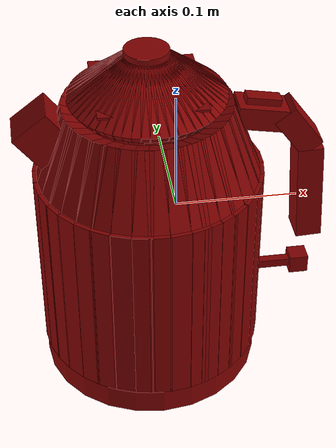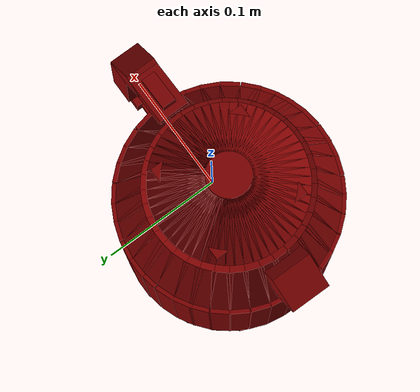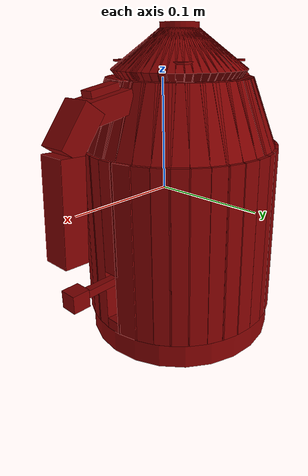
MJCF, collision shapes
<?xml version='1.0' encoding='UTF-8'?>
<mujoco model="model">
  <option timestep="0.002" gravity="0.0 0.0 -9.81"/>
  <compiler angle="radian"/>
  <asset>
    <mesh file="visuals/button_lid.obj" name="button_lid_vis"/>
    <mesh file="visuals/Body001.obj" name="Body001_vis"/>
    <mesh file="visuals/kettle_main.obj" name="kettle_main_vis"/>
    <mesh file="visuals/lid.obj" name="lid_vis"/>
    <mesh file="visuals/switch.obj" name="switch_vis"/>
    <texture file="visuals/T_BC001.png" name="Body001_material" type="2d"/>
    <material name="Body001_material" rgba="1 1 1 1.0" texture="Body001_material" shininess="0.1" specular="2"/>
    <texture file="visuals/T_BC001.png" name="kettle_main_material" type="2d"/>
    <material name="kettle_main_material" rgba="1 1 1 1.0" texture="kettle_main_material" shininess="0.1" specular="2"/>
    <texture file="visuals/T_BC001.png" name="button_lid_material" type="2d"/>
    <material name="button_lid_material" rgba="1 1 1 1.0" texture="button_lid_material" shininess="0.1" specular="2"/>
    <texture file="visuals/T_BC001.png" name="lid_material" type="2d"/>
    <material name="lid_material" rgba="1 1 1 1.0" texture="lid_material" shininess="0.1" specular="2"/>
    <texture file="visuals/T_BC001.png" name="switch_material" type="2d"/>
    <material name="switch_material" rgba="1 1 1 1.0" texture="switch_material" shininess="0.1" specular="2"/>
  </asset>
  <default>
    <default class="visual">
      <geom conaffinity="0" contype="0" group="1" type="mesh"/>
    </default>
    <default class="collision">
      <geom group="0" rgba="0.5 0 0 0.5"/>
    </default>
    <default class="spawn">
      <geom group="0" rgba="1 1 1 0.5" contype="0" conaffinity="0"/>
      <site group="0" rgba="1 1 1 0.5"/>
    </default>
    <default class="region">
      <geom group="1" conaffinity="0" contype="0" rgba="0 1 0 0" mass="0"/>
    </default>
  </default>
  <worldbody>
    <body>
      <body name="object">
        <geom mesh="Body001_vis" type="mesh" solimp="0.998 0.998 0.001" solref="0.001 1" friction="0.95 0.3 0.1" class="visual" material="Body001_material"/>
        <geom type="cylinder" pos="-0.02239589 0.00002150 -0.13422964" size="0.09025027602910995 0.011107783764600754" quat="1.0 0.0 0.0 0.0" class="collision"/>
        <body name="kettle_main">
          <geom mesh="kettle_main_vis" type="mesh" solimp="0.998 0.998 0.001" solref="0.001 1" friction="0.95 0.3 0.1" class="visual" material="kettle_main_material"/>
          <geom type="box" pos="-0.10581779 -0.00011224 -0.04121937" size="0.007948611862957478 0.007948611862957478 0.08029966801404953" quat="1.0 0.0 0.0 0.0" class="collision"/>
          <geom type="box" pos="-0.09212531 -0.00011223 0.06601944" size="0.007948610931634903 0.007948611862957478 0.03272615373134613" quat="0.9845579266548157 -4.873923928498994e-16 0.1750592142343521 -5.9920197692520105e-09" class="collision"/>
          <geom type="box" pos="-0.10438437 -0.01554539 -0.04121937" size="0.007948611862957478 0.007948611862957478 0.08029966056346893" quat="0.9957143664360046 0.0 0.0 0.09248179197311401" class="collision"/>
          <geom type="box" pos="-0.09092609 -0.01302363 0.06601944" size="0.007948610931634903 0.007948611862957478 0.03272615373134613" quat="0.980338454246521 -0.016189808025956154 0.17430897057056427 0.09105365723371506" class="collision"/>
          <geom type="box" pos="-0.10038333 -0.02979825 -0.04121937" size="0.007948611862957478 0.007948611862957478 0.08029966801404953" quat="0.9836534261703491 0.0 0.0 0.18007197976112366" class="collision"/>
          <geom type="box" pos="-0.08757885 -0.02494759 0.06601943" size="0.007948610931634903 0.007948611862957478 0.03272615373134613" quat="0.9684637784957886 -0.03152326121926308 0.17219769954681396 0.1772911548614502" class="collision"/>
          <geom type="box" pos="-0.09485838 -0.04154465 -0.04121937" size="0.007948611862957478 0.007948611862957478 0.08029966801404953" quat="0.9667513370513916 0.0 0.0 0.25571826100349426" class="collision"/>
          <geom type="box" pos="-0.08295664 -0.03477464 0.06601945" size="0.007948610931634903 0.007948611862957478 0.03272615373134613" quat="0.9518226981163025 -0.044765815138816833 0.16923873126506805 0.2517693340778351" class="collision"/>
          <geom type="box" pos="-0.08598178 -0.05425067 -0.04121937" size="0.007948611862957478 0.007948611862957478 0.08029966801404953" quat="0.938959002494812 0.0 0.0 0.34402912855148315" class="collision"/>
          <geom type="box" pos="-0.07553048 -0.04540451 0.06601944" size="0.007948610000312328 0.007948611862957478 0.03272615373134613" quat="0.9244593977928162 -0.06022552773356438 0.16437342762947083 0.3387168347835541" class="collision"/>
          <geom type="box" pos="-0.07545696 -0.06466125 -0.04121937" size="0.007948611862957478 0.007948611862957478 0.08029966801404953" quat="0.9049006104469299 0.0 0.0 0.42562296986579895" class="collision"/>
          <geom type="box" pos="-0.06672540 -0.05411403 0.06601945" size="0.007948610931634903 0.007948611862957478 0.03272615373134613" quat="0.8909270763397217 -0.07450919598340988 0.1584111899137497 0.41905033588409424" class="collision"/>
          <geom type="box" pos="-0.06492897 -0.07209078 -0.04121937" size="0.007948611862957478 0.007948611862957478 0.08029966801404953" quat="0.8694984316825867 0.0 0.0 0.4939357042312622" class="collision"/>
          <geom type="box" pos="-0.05791766 -0.06032958 0.06601944" size="0.007948610931634903 0.007948611862957478 0.03272615373134613" quat="0.8560715317726135 -0.08646801114082336 0.1522136926651001 0.48630836606025696" class="collision"/>
          <geom type="box" pos="-0.05093862 -0.07876215 -0.04121937" size="0.007948611862957478 0.007948610931634903 0.08029966801404953" quat="0.8200920224189758 0.0 0.0 0.572231650352478" class="collision"/>
          <geom type="box" pos="-0.04621332 -0.06591086 0.06601944" size="0.007948610931634903 0.007948610931634903 0.03272615373134613" quat="0.8074278831481934 -0.10017447918653488 0.14356465637683868 0.5633955001831055" class="collision"/>
          <geom type="box" pos="-0.03664734 -0.08262372 -0.04121937" size="0.007948611862957478 0.007948611862957478 0.08029966801404953" quat="0.7663411498069763 0.0 0.0 0.6424338221549988" class="collision"/>
          <geom type="box" pos="-0.03425722 -0.06914146 0.06601944" size="0.007948610931634903 0.007948611862957478 0.03272615373134613" quat="0.7545071840286255 -0.11246397346258163 0.13415507972240448 0.6325133442878723" class="collision"/>
          <geom type="box" pos="-0.02530313 -0.08384592 -0.04121937" size="0.007948611862957478 0.007948611862957478 0.08029966801404953" quat="0.7208265662193298 0.0 0.0 0.6931154727935791" class="collision"/>
          <geom type="box" pos="-0.02476663 -0.07016394 0.06601944" size="0.007948610931634903 0.007948611862957478 0.03272615373134613" quat="0.7096955180168152 -0.12133622169494629 0.1261872947216034 0.682412326335907" class="collision"/>
          <geom type="box" pos="-0.00982566 -0.08301828 -0.04121937" size="0.007948611862957478 0.007948611862957478 0.08029966801404953" quat="0.653636634349823 0.0 0.0 0.7568085193634033" class="collision"/>
          <geom type="box" pos="-0.01181816 -0.06947154 0.06601944" size="0.007948610931634903 0.007948611862957478 0.03272615373134613" quat="0.6435433030128479 -0.1324862688779831 0.11442514508962631 0.7451216578483582" class="collision"/>
          <geom type="box" pos="0.00457303 -0.07957879 -0.04121937" size="0.007948611862957478 0.007948610931634903 0.08029966801404953" quat="0.5842328667640686 0.0 0.0 0.8115860819816589" class="collision"/>
          <geom type="box" pos="0.00022779 -0.06659405 0.06601944" size="0.007948610931634903 0.007948611862957478 0.03272615373134613" quat="0.5752110481262207 -0.14207561314105988 0.10227534919977188 0.7990534901618958" class="collision"/>
          <geom type="box" pos="0.06036700 0.01530300 -0.04121937" size="0.007948611862957478 0.009708872996270657 0.08029966801404953" quat="0.10280422121286392 0.0 0.0 -0.994701623916626" class="collision"/>
          <geom type="box" pos="0.04660392 0.01422567 0.06601944" size="0.007948610931634903 0.007948611862957478 0.03272615373134613" quat="0.10121671855449677 0.1741313934326172 0.017996804788708687 -0.9793413877487183" class="collision"/>
          <geom type="box" pos="0.05544749 0.03183982 -0.04121937" size="0.007948611862957478 0.007948611862957478 0.08029966801404953" quat="0.19435535371303558 0.0 0.0 -0.9809311628341675" class="collision"/>
          <geom type="box" pos="0.04278945 0.02661889 0.06601944" size="0.007948610931634903 0.007948611862957478 0.03272615373134613" quat="0.19135409593582153 0.17172114551067352 0.03402369096875191 -0.9657835364341736" class="collision"/>
          <geom type="box" pos="0.04861606 0.04497313 -0.04121937" size="0.007948611862957478 0.007948611862957478 0.08029966801404953" quat="0.28024157881736755 0.0 0.0 -0.9599295258522034" class="collision"/>
          <geom type="box" pos="0.03707426 0.03760624 0.06601944" size="0.007948610000312328 0.007948611862957478 0.03272615373134613" quat="0.27591386437416077 0.16804443299770355 0.04905886948108673 -0.9451062679290771" class="collision"/>
          <geom type="box" pos="0.04080552 0.05534127 -0.04121937" size="0.007948611862957478 0.007948611862957478 0.08029966801404953" quat="0.35374948382377625 0.0 0.0 -0.9353402256965637" class="collision"/>
          <geom type="box" pos="0.03053996 0.04628023 0.06601944" size="0.007948610931634903 0.007948611862957478 0.03272615373134613" quat="0.3482867479324341 0.163739874958992 0.061927080154418945 -0.9208966493606567" class="collision"/>
          <geom type="box" pos="0.02951791 0.06596330 -0.04121937" size="0.007948611862957478 0.007948611862957478 0.08029966801404953" quat="0.43873539566993713 0.0 0.0 -0.8986163139343262" class="collision"/>
          <geom type="box" pos="0.02109675 0.05516663 0.06601944" size="0.007948610931634903 0.007948611862957478 0.03272615373134613" quat="0.43196019530296326 0.15731112658977509 0.07680465281009674 -0.884739875793457" class="collision"/>
          <geom type="box" pos="0.01708644 0.07400129 -0.04121937" size="0.007948611862957478 0.007948611862957478 0.08029966801404953" quat="0.5163952112197876 0.0 0.0 -0.8563503623008728" class="collision"/>
          <geom type="box" pos="0.01069653 0.06189124 0.06601943" size="0.007948610931634903 0.007948610931634903 0.03272615373134613" quat="0.5084208250045776 0.1499119997024536 0.09039968252182007 -0.843126654624939" class="collision"/>
          <geom type="box" pos="0.00526149 0.07912060 -0.04121937" size="0.007948611862957478 0.007948610931634903 0.08029966801404953" quat="0.5807065963745117 0.0 0.0 -0.8141129016876221" class="collision"/>
          <geom type="box" pos="0.00080378 0.06617406 0.06601944" size="0.007948610931634903 0.007948610931634903 0.03272615373134613" quat="0.5717393159866333 0.14251793920993805 0.10165807604789734 -0.801541268825531" class="collision"/>
          <geom type="box" pos="-0.00979757 0.08278968 -0.04121937" size="0.007948611862957478 0.007948610931634903 0.08029966801404953" quat="0.6535086035728455 0.0 0.0 -0.7569190859794617" class="collision"/>
          <geom type="box" pos="-0.01179465 0.06924361 0.06601944" size="0.007948610931634903 0.007948611862957478 0.03272615373134613" quat="0.6434170603752136 0.13250568509101868 0.11440267413854599 -0.7452306747436523" class="collision"/>
          <geom type="box" pos="-0.02457652 0.08364677 -0.04121937" size="0.008187434636056423 0.008187435567378998 0.08029966801404953" quat="1.0 0.0 0.0 0.0" class="collision"/>
          <geom type="box" pos="-0.02415874 0.06996065 0.06601945" size="0.007948610931634903 0.007948610931634903 0.03272615373134613" quat="0.706728458404541 0.12188252806663513 0.12565977871418 -0.6854845881462097" class="collision"/>
          <geom type="box" pos="-0.03593093 0.08252304 -0.04121937" size="0.007948612794280052 0.007948611862957478 0.08029966801404953" quat="0.7635470032691956 0.0 0.0 -0.6457522511482239" class="collision"/>
          <geom type="box" pos="-0.03365787 0.06902056 0.06601944" size="0.007948610931634903 0.007948611862957478 0.03272615373134613" quat="0.7517561912536621 0.113044872879982 0.13366585969924927 -0.6357805728912354" class="collision"/>
          <geom type="box" pos="-0.05091195 0.07854747 -0.04121937" size="0.007948611862957478 0.007948610931634903 0.08029966801404953" quat="0.8199950456619263 0.0 0.0 -0.5723706483840942" class="collision"/>
          <geom type="box" pos="-0.04619104 0.06569458 0.06601944" size="0.007948610931634903 0.007948610931634903 0.03272615373134613" quat="0.8073327541351318 0.10019870102405548 0.1435476690530777 -0.5635318160057068" class="collision"/>
          <geom type="box" pos="-0.06430284 0.07223589 -0.04121937" size="0.007948611862957478 0.007948610931634903 0.08029966801404953" quat="0.8673474788665771 0.0 0.0 -0.49770310521125793" class="collision"/>
          <geom type="box" pos="-0.05739384 0.06041429 0.06601945" size="0.007948610931634903 0.007948610931634903 0.03272615373134613" quat="0.8539538383483887 0.08712749928236008 0.15183717012405396 -0.49001747369766235" class="collision"/>
          <geom type="box" pos="0.01295982 -0.07626037 -0.04121937" size="0.007948611862957478 0.007948611862957478 0.08029966801404953" quat="0.5397094488143921 0.0 0.0 0.8418513536453247" class="collision"/>
          <geom type="box" pos="0.00724420 -0.06381787 0.06601944" size="0.007948610931634903 0.007948611862957478 0.03272615373134613" quat="0.5313752889633179 -0.14737384021282196 0.09448109567165375 0.8288513422012329" class="collision"/>
          <geom type="box" pos="0.02581375 -0.06891677 -0.04121937" size="0.007948611862957478 0.007948611862957478 0.08029966801404953" quat="0.46323898434638977 0.0 0.0 0.886233389377594" class="collision"/>
          <geom type="box" pos="0.01799781 -0.05767421 0.06601944" size="0.007948610931634903 0.007948611862957478 0.03272615373134613" quat="0.4560857117176056 -0.15514332056045532 0.08109427988529205 0.8725480437278748" class="collision"/>
          <geom type="box" pos="0.03471698 -0.06178111 -0.04121937" size="0.007948611862957478 0.007948611862957478 0.08029966801404953" quat="0.40182992815971375 0.0 0.0 0.9157143235206604" class="collision"/>
          <geom type="box" pos="0.02544627 -0.05170451 0.06601944" size="0.007948610931634903 0.007948611862957478 0.03272615373134613" quat="0.3956248164176941 -0.1603042334318161 0.07034402340650558 0.9015737771987915" class="collision"/>
          <geom type="box" pos="0.04510408 -0.05027696 -0.04121937" size="0.007948611862957478 0.007948611862957478 0.08029966801404953" quat="0.31542089581489563 0.0 0.0 0.9489519000053406" class="collision"/>
          <geom type="box" pos="0.03413612 -0.04208011 0.06601945" size="0.007948610931634903 0.007948611862957478 0.03272615373134613" quat="0.3105500340461731 -0.16612274944782257 0.05521732568740845 0.9342980980873108" class="collision"/>
          <geom type="box" pos="0.05288412 -0.03768240 -0.04121937" size="0.007948611862957478 0.007948611862957478 0.08029966801404953" quat="0.23036693036556244 0.0 0.0 0.9731038212776184" class="collision"/>
          <geom type="box" pos="0.04064493 -0.03154348 0.06601945" size="0.007948610931634903 0.007948611862957478 0.03272615373134613" quat="0.22680959105491638 -0.17035050690174103 0.040327806025743484 0.9580771327018738" class="collision"/>
          <geom type="box" pos="0.05784227 -0.02549264 -0.04121937" size="0.007948611862957478 0.007948610931634903 0.08029966801404953" quat="0.15324817597866058 0.0 0.0 0.9881877303123474" class="collision"/>
          <geom type="box" pos="0.04479292 -0.02134552 0.06601945" size="0.007948610931634903 0.007948610931634903 0.03272615373134613" quat="0.15088170766830444 -0.17299136519432068 0.026827529072761536 0.9729280471801758" class="collision"/>
          <geom type="box" pos="0.04805317 0.00202580 0.06601944" size="0.007948610931634903 0.007948611862957478 0.03272615373134613" quat="0.01501502562314272 0.17503874003887177 0.002669745124876499 -0.9844434261322021" class="collision"/>
          <geom type="box" pos="0.04754600 -0.00879500 0.06601943" size="0.007948610931634903 0.00794860441237688 0.03272615373134613" quat="0.06108783185482025 -0.17472168803215027 0.010861722752451897 0.9826610088348389" class="collision"/>
          <geom type="box" pos="0.06075498 -0.01316789 -0.04124001" size="0.007948611862957478 0.007948611862957478 0.0803203135728836" quat="0.07813844829797745 0.0 0.0 0.9969425201416016" class="collision"/>
          <geom type="box" pos="0.06175879 0.00169407 -0.01199844" size="0.0081181013956666 0.008118100464344025 0.05107874423265457" quat="1.0 0.0 0.0 0.0" class="collision"/>
          <geom type="box" pos="0.06175879 0.00169407 -0.11641592" size="0.008118102326989174 0.008118102326989174 0.005217194557189941" quat="1.0 0.0 0.0 0.0" class="collision"/>
          <geom class="collision" type="box" pos="0.10855432 0.00009023 0.00803316" size="0.01063530147075653 0.012839299626648426 0.042976342141628265" quat="0.9997133612632751 -5.541294305497961e-16 -0.023941773921251297 8.194917522352796e-10" name="handle_main"/>
          <geom class="collision" type="box" pos="0.09581497 0.00009023 0.06793181" size="0.009957022964954376 0.012839298695325851 0.020239876583218575" quat="0.9495863914489746 -9.819930890204922e-17 -0.31350547075271606 1.0730835775518699e-08" name="handle_2"/>
          <geom class="collision" type="box" pos="0.06607635 0.00018422 0.08208915" size="0.00939098373055458 0.012722176499664783 0.020239876583218575" quat="0.7654904127120972 -6.071419934053314e-15 -0.6434472799301147 2.202426507835753e-08" name="handle_1"/>
          <geom type="box" pos="-0.10301400 -0.00011223 0.08062714" size="0.016973985359072685 0.016973985359072685 0.016973985359072685" quat="0.9464852213859558 -2.3338427968222194e-15 -0.322747141122818 1.1047153414267541e-08" class="collision"/>
          <geom type="box" pos="-0.09389223 0.04297440 -0.04121937" size="0.007948611862957478 0.007948611862957478 0.08029966801404953" quat="0.9637652635574341 0.0 0.0 -0.26675182580947876" class="collision"/>
          <geom type="box" pos="-0.08214838 0.03593410 0.06601944" size="0.007948610931634903 0.007948611862957478 0.03272615373134613" quat="0.9488826990127563 0.04669737443327904 0.16871598362922668 -0.26263266801834106" class="collision"/>
          <geom type="box" pos="-0.10059809 0.02900055 -0.04121937" size="0.007948611862957478 0.007948610931634903 0.08029966056346893" quat="0.9843046069145203 0.0 0.0 -0.17647796869277954" class="collision"/>
          <geom type="box" pos="-0.08775851 0.02424357 0.06601944" size="0.007948610931634903 0.007948610931634903 0.03272615373134613" quat="0.9691048860549927 0.03089405782520771 0.17231160402297974 -0.1737527996301651" class="collision"/>
          <geom type="box" pos="-0.10449489 0.01471885 -0.04121937" size="0.007948611862957478 0.007948611862957478 0.08029966801404953" quat="0.9960455298423767 0.0 0.0 -0.08884436637163162" class="collision"/>
          <geom type="box" pos="-0.09101857 0.01229547 0.06601944" size="0.007948610931634903 0.007948611862957478 0.03272615373134613" quat="0.9806644916534424 0.015552972443401814 0.17436695098876953 -0.08747240155935287" class="collision"/>
          <geom type="box" pos="-0.07469483 0.06506020 -0.04121937" size="0.007948611862957478 0.007948611862957478 0.08029966801404953" quat="0.9023845195770264 0.0 0.0 -0.43093177676200867" class="collision"/>
          <geom type="box" pos="-0.06608781 0.05441111 0.06601944" size="0.007948610931634903 0.007948611862957478 0.03272615373134613" quat="0.8884498476982117 0.07543856650590897 0.15797072649002075 -0.42427724599838257" class="collision"/>
          <geom type="box" pos="-0.08579665 0.05424416 -0.04121937" size="0.007948611862957478 0.007948610931634903 0.08029966056346893" quat="0.9383705854415894 0.0 0.0 -0.34563082456588745" class="collision"/>
          <geom type="box" pos="-0.07537559 0.04536240 0.06601944" size="0.007948610931634903 0.007948611862957478 0.03272615373134613" quat="0.9238801598548889 0.06050587072968483 0.16427040100097656 -0.3402935564517975" class="collision"/>
          <geom type="cylinder" pos="-0.02222697 -0.00044559 -0.11939092" size="0.08808176964521408 0.00360363838262856" quat="1.0 0.0 0.0 0.0" class="collision"/>
          <body name="button_lid">
            <joint axis="-9.000340222254885e-16 1.0 6.617444900424222e-24" pos="0.06693952 -0.00007398 0.08919348" limited="true" name="button_lid_joint" range="0.0 0.2617993877991494" type="hinge" damping="1" frictionloss="1" armature=".01" stiffness="0.05" springref="-1"/>
            <geom mesh="button_lid_vis" type="mesh" solimp="0.998 0.998 0.001" solref="0.001 1" friction="0.95 0.3 0.1" class="visual" material="button_lid_material"/>
            <geom class="collision" type="box" pos="0.06788546 -0.00035834 0.09465915" size="0.002905243309214711 0.005928454454988241 0.014031442813575268" quat="0.7654904127120972 -6.071419934053314e-15 -0.6434472799301147 2.202426507835753e-08" name="button_lid_main"/>
          </body>
          <body name="lid">
            <joint axis="0.0 1.0 0.0" pos="0.03912222 -0.00011224 0.09875310" limited="true" name="lid_joint" range="0.0 1.5707963267948966" type="hinge" damping="1" frictionloss="1" armature=".01" stiffness="0.05"/>
            <geom mesh="lid_vis" type="mesh" solimp="0.998 0.998 0.001" solref="0.001 1" friction="0.95 0.3 0.1" class="visual" material="lid_material"/>
            <geom class="collision" type="cylinder" pos="-0.02201975 -0.00011224 0.13959118" size="0.0175471194088459 0.0056289141066372395" quat="1.0 0.0 0.0 0.0" name="lid_main"/>
            <geom class="collision" type="box" pos="0.01493975 -0.00011224 0.11993580" size="0.004339896142482758 0.0036822487600147724 0.027961205691099167" quat="0.8974714875221252 1.0892126900058688e-15 -0.4410724341869354 1.5097267436203765e-08" name="lid_1"/>
            <geom class="collision" type="box" pos="0.01472907 -0.00420438 0.11995714" size="0.004312953446060419 0.0036822487600147724 0.027961207553744316" quat="0.8960921764373779 -0.02444438450038433 -0.4403945505619049 -0.049738168716430664" name="lid_2"/>
            <geom class="collision" type="box" pos="0.01398922 -0.00856668 0.11997295" size="0.004292984027415514 0.003682248992845416 0.027961205691099167" quat="0.8915120363235474 -0.05074528977274895 -0.43814361095428467 -0.10325387120246887" name="lid_3"/>
            <geom class="collision" type="box" pos="0.01283921 -0.01249392 0.11997871" size="0.004285700153559446 0.0036822487600147724 0.027961203828454018" quat="0.8844356536865234 -0.07490304857492447 -0.43466609716415405 -0.15240877866744995" name="lid_4"/>
            <geom class="collision" type="box" pos="0.01129802 -0.01629672 0.12004099" size="0.0042070322670042515 0.0036822487600147724 0.027961205691099167" quat="0.8746300339698792 -0.09887715429067612 -0.4298466444015503 -0.20119020342826843" name="lid_5"/>
            <geom class="collision" type="box" pos="0.00912754 -0.02016047 0.12004230" size="0.004205390345305204 0.0036822494585067034 0.027961205691099167" quat="0.8610280752182007 -0.12441421300172806 -0.42316219210624695 -0.2531510889530182" name="lid_6"/>
            <geom class="collision" type="box" pos="0.00650189 -0.02375328 0.12004751" size="0.004198800772428513 0.0036822487600147724 0.027961205691099167" quat="0.8442685604095459 -0.14960592985153198 -0.4149251878261566 -0.304410457611084" name="lid_7"/>
            <geom class="collision" type="box" pos="0.00370682 -0.02676093 0.12004098" size="0.004207058809697628 0.0036822487600147724 0.027961203828454018" quat="0.8261004686355591 -0.17237123847007751 -0.40599626302719116 -0.3507324159145355" name="lid_8"/>
            <geom class="collision" type="box" pos="0.00030592 -0.02959748 0.11996755" size="0.004299799911677837 0.003682248992845416 0.027961203828454018" quat="0.8036397099494934 -0.19634991884231567 -0.3949579894542694 -0.3995223939418793" name="lid_9"/>
            <geom class="collision" type="box" pos="-0.00309685 -0.03186755 0.11994407" size="0.004329459276050329 0.0036822487600147724 0.027961203828454018" quat="0.7803103923797607 -0.2178957611322403 -0.38349243998527527 -0.4433629512786865" name="lid_10"/>
            <geom class="collision" type="box" pos="-0.00673544 -0.03374914 0.11991909" size="0.004361014347523451 0.0036822492256760597 0.027961209416389465" quat="0.7545400857925415 -0.23881405591964722 -0.3708271086215973 -0.4859263002872467" name="lid_11"/>
            <geom class="collision" type="box" pos="-0.01085452 -0.03535732 0.11995112" size="0.004320546984672546 0.0036822492256760597 0.027961209416389465" quat="0.7241202592849731 -0.2605694532394409 -0.35587701201438904 -0.5301933288574219" name="lid_12"/>
            <geom class="collision" type="box" pos="-0.01483741 -0.03639752 0.11997441" size="0.004291139077395201 0.0036822487600147724 0.027961203828454018" quat="0.6934887170791626 -0.2799726724624634 -0.34082281589508057 -0.569674015045166" name="lid_13"/>
            <geom class="collision" type="box" pos="-0.01889521 -0.03699345 0.12000556" size="0.004251781385391951 0.0036822487600147724 0.027961205691099167" quat="0.6608513593673706 -0.2984309494495392 -0.3247827887535095 -0.6072319149971008" name="lid_14"/>
            <geom class="collision" type="box" pos="-0.02332319 -0.03713127 0.12004268" size="0.004204895813018084 0.003682248992845416 0.02796120196580887" quat="0.6233428120613098 -0.31732526421546936 -0.30634891986846924 -0.6456769704818726" name="lid_15"/>
            <geom class="collision" type="box" pos="-0.02739996 -0.03673141 0.12000422" size="0.004253475461155176 0.0036822487600147724 0.027961203828454018" quat="0.5866736173629761 -0.33378469944000244 -0.28832730650901794 -0.6791680455207825" name="lid_16"/>
            <geom class="collision" type="box" pos="-0.03142264 -0.03592275 0.12001993" size="0.004233641549944878 0.003682248294353485 0.027961203828454018" quat="0.5481322407722473 -0.3492509424686432 -0.2693857252597809 -0.7106378674507141" name="lid_17"/>
            <geom class="collision" type="box" pos="-0.03562866 -0.03453481 0.12000784" size="0.004248911514878273 0.0036822485271841288 0.027961205691099167" quat="0.5046399235725403 -0.3647402822971344 -0.24801091849803925 -0.7421547174453735" name="lid_18"/>
            <geom class="collision" type="box" pos="-0.03954352 -0.03265628 0.11993919" size="0.004335622303187847 0.003682248992845416 0.027961205691099167" quat="0.4602109491825104 -0.3786679208278656 -0.22617584466934204 -0.7704939842224121" name="lid_19"/>
            <geom class="collision" type="box" pos="-0.04302067 -0.03049260 0.11990073" size="0.004384198226034641 0.0036822487600147724 0.027961209416389465" quat="0.4168027639389038 -0.39062073826789856 -0.2048424929380417 -0.7948147058486938" name="lid_20"/>
            <geom class="collision" type="box" pos="-0.04648555 -0.02775236 0.11987524" size="0.004416401963680983 0.0036822487600147724 0.027961207553744316" quat="0.36850979924201965 -0.4021749794483185 -0.18110831081867218 -0.818324863910675" name="lid_21"/>
            <geom class="collision" type="box" pos="-0.04941668 -0.02490590 0.11992374" size="0.004355133511126041 0.003682248992845416 0.027961203828454018" quat="0.3226809799671173 -0.4115769565105438 -0.15858522057533264 -0.8374557495117188" name="lid_22"/>
            <geom class="collision" type="box" pos="-0.05205635 -0.02176774 0.12002606" size="0.004225896205753088 0.0036822492256760597 0.027961207553744316" quat="0.27577275037765503 -0.4197334349155426 -0.13553160429000854 -0.8540517687797546" name="lid_23"/>
            <geom class="collision" type="box" pos="-0.05447630 -0.01805248 0.12009815" size="0.004134832881391048 0.0036822485271841288 0.027961207553744316" quat="0.22418922185897827 -0.42708921432495117 -0.11018037796020508 -0.8690191507339478" name="lid_24"/>
            <geom class="collision" type="box" pos="-0.05611080 -0.01449017 0.11998698" size="0.004275267478078604 0.0036822485271841288 0.027961203828454018" quat="0.1779109239578247 -0.4323190152645111 -0.08743628114461899 -0.8796606659889221" name="lid_25"/>
            <geom class="collision" type="box" pos="-0.05746788 -0.01062165 0.11995355" size="0.004317483864724636 0.003682248992845416 0.027961203828454018" quat="0.12888658046722412 -0.4365004599094391 -0.06334273517131805 -0.8881685137748718" name="lid_26"/>
            <geom class="collision" type="box" pos="-0.05849019 -0.00631653 0.11998104" size="0.004282756242901087 0.0036822487600147724 0.027961205691099167" quat="0.07552493363618851 -0.43950793147087097 -0.03711756318807602 -0.8942880034446716" name="lid_27"/>
            <geom class="collision" type="box" pos="-0.05888823 -0.00224639 0.11989781" size="0.004387889988720417 0.0036822534166276455 0.027961203828454018" quat="0.025942709296941757 -0.4408881664276123 -0.01274983212351799 -0.8970964550971985" name="lid_28"/>
            <geom class="collision" type="box" pos="-0.05885640 0.00184475 0.11984391" size="0.0044559696689248085 0.003682248992845416 0.027961205691099167" quat="0.02381470613181591 0.44091713428497314 -0.011704008094966412 0.8971554636955261" name="lid_29"/>
            <geom class="collision" type="box" pos="-0.05838521 0.00623461 0.11987835" size="0.004412463866174221 0.0036822487600147724 0.027961205691099167" quat="0.0774402916431427 0.43942737579345703 -0.03805890306830406 0.8941242098808289" name="lid_30"/>
            <geom class="collision" type="box" pos="-0.05750145 0.01002433 0.11986029" size="0.004435282200574875 0.0036822494585067034 0.027961203828454018" quat="0.12446814775466919 0.4368099272251129 -0.061171285808086395 0.8887985348701477" name="lid_31"/>
            <geom class="collision" type="box" pos="-0.05616832 0.01389157 0.11986960" size="0.004423519130796194 0.003682248992845416 0.027961203828454018" quat="0.17353439331054688 0.432748407125473 -0.08528542518615723 0.8805345296859741" name="lid_32"/>
            <geom class="collision" type="box" pos="-0.05429558 0.01789419 0.11993503" size="0.004340875428169966 0.0036822487600147724 0.027961207553744316" quat="0.22589775919914246 0.42687174677848816 -0.11102001368999481 0.8685765862464905" name="lid_33"/>
            <geom class="collision" type="box" pos="-0.05208633 0.02133289 0.11989875" size="0.004386709537357092 0.003682248294353485 0.027961203828454018" quat="0.27359631657600403 0.42007744312286377 -0.13446196913719177 0.8547514081001282" name="lid_34"/>
            <geom class="collision" type="box" pos="-0.04953370 0.02453348 0.11990817" size="0.0043748063035309315 0.0036822485271841288 0.027961205691099167" quat="0.32054653763771057 0.41197967529296875 -0.15753616392612457 0.8382750153541565" name="lid_35"/>
            <geom class="collision" type="box" pos="-0.04636822 0.02761429 0.11985868" size="0.004437318071722984 0.0036822485271841288 0.027961205691099167" quat="0.37011852860450745 0.4018179178237915 -0.18189889192581177 0.8175985813140869" name="lid_36"/>
            <geom class="collision" type="box" pos="-0.04412621 0.02955073 0.11998107" size="0.004282732494175434 0.0036822487600147724 0.027961205691099167" quat="0.4025830328464508 0.39420634508132935 -0.19785383343696594 0.802111029624939" name="lid_37"/>
            <geom class="collision" type="box" pos="-0.04069630 0.03179573 0.11995205" size="0.00431937025859952 0.0036822487600147724 0.027961203828454018" quat="0.44641730189323425 0.38263553380966187 -0.21939678490161896 0.7785670757293701" name="lid_38"/>
            <geom class="collision" type="box" pos="-0.03674691 0.03378622 0.11993563" size="0.004340112209320068 0.0036822487600147724 0.027961203828454018" quat="0.4921923875808716 0.3688258230686188 -0.241893470287323 0.7504676580429077" name="lid_39"/>
            <geom class="collision" type="box" pos="-0.03291231 0.03520516 0.11993513" size="0.004340757615864277 0.0036822487600147724 0.027961207553744316" quat="0.532950222492218 0.3548809289932251 -0.26192447543144226 0.7220935821533203" name="lid_40"/>
            <geom class="collision" type="box" pos="-0.02894030 0.03621198 0.11995925" size="0.004310279618948698 0.0036822485271841288 0.027961205691099167" quat="0.572149932384491 0.33981966972351074 -0.2811894714832306 0.6914474368095398" name="lid_41"/>
            <geom class="collision" type="box" pos="-0.02455393 0.03679674 0.11998295" size="0.004280345048755407 0.0036822487600147724 0.027961203828454018" quat="0.6124878525733948 0.32239022850990295 -0.3010140359401703 0.655983030796051" name="lid_42"/>
            <geom class="collision" type="box" pos="-0.02050801 0.03688496 0.12002468" size="0.004227647557854652 0.0036822485271841288 0.027961205691099167" quat="0.6474331617355347 0.30545225739479065 -0.31818830966949463 0.6215186715126038" name="lid_43"/>
            <geom class="collision" type="box" pos="-0.01642363 0.03648504 0.12001766" size="0.004236506298184395 0.0036822487600147724 0.027961203828454018" quat="0.6808830499649048 0.2873486578464508 -0.33462759852409363 0.584682285785675" name="lid_44"/>
            <geom class="collision" type="box" pos="-0.01208532 0.03558229 0.12005467" size="0.004189760889858007 0.0036822492256760597 0.027961203828454018" quat="0.7146395444869995 0.2668166756629944 -0.35121792554855347 0.5429043769836426" name="lid_45"/>
            <geom class="collision" type="box" pos="-0.00825641 0.03413452 0.11987027" size="0.004422673024237156 0.003682248992845416 0.027961207553744316" quat="0.7435758113861084 0.2469806671142578 -0.36543869972229004 0.5025436282157898" name="lid_46"/>
            <geom class="collision" type="box" pos="-0.00447965 0.03253349 0.12006527" size="0.00417637825012207 0.0036822485271841288 0.027961205691099167" quat="0.7702843546867371 0.22634823620319366 -0.37856465578079224 0.4605618715286255" name="lid_47"/>
            <geom class="collision" type="box" pos="-0.00075509 0.03013582 0.11995556" size="0.004314951598644257 0.0036822485271841288 0.027961207553744316" quat="0.7964555621147156 0.2032971829175949 -0.39142727851867676 0.41365864872932434" name="lid_48"/>
            <geom class="collision" type="box" pos="0.00247114 0.02759913 0.11996593" size="0.004301839042454958 0.0036822487600147724 0.027961205691099167" quat="0.8181832432746887 0.18126264214515686 -0.4021053910255432 0.36882415413856506" name="lid_49"/>
            <geom class="collision" type="box" pos="0.00543881 0.02476496 0.12005562" size="0.00418855482712388 0.0036822487600147724 0.027961203828454018" quat="0.8373661041259766 0.1586994081735611 -0.41153308749198914 0.3229132890701294" name="lid_50"/>
            <geom class="collision" type="box" pos="0.00818658 0.02128869 0.12001322" size="0.004242124035954475 0.0036822487600147724 0.027961203828454018" quat="0.855183482170105 0.13379693031311035 -0.4202895760536194 0.27224302291870117" name="lid_51"/>
            <geom class="collision" type="box" pos="0.01032803 0.01780036 0.11995745" size="0.004312561359256506 0.003682248992845416 0.027961207553744316" quat="0.8689330816268921 0.11034417152404785 -0.42704689502716064 0.22452254593372345" name="lid_52"/>
            <geom class="collision" type="box" pos="0.01212873 0.01411748 0.11998135" size="0.004282373934984207 0.0036822487600147724 0.027961205691099167" quat="0.88004070520401 0.08650752902030945 -0.4325059950351715 0.17602106928825378" name="lid_53"/>
            <geom class="collision" type="box" pos="0.01357293 0.00993433 0.11996681" size="0.0043007321655750275 0.0036822487600147724 0.027961203828454018" quat="0.8889943361282349 0.06047985330224037 -0.4369063079357147 0.12306128442287445" name="lid_54"/>
            <geom class="collision" type="box" pos="0.01452980 0.00549378 0.11995848" size="0.004311250988394022 0.0036822492256760597 0.027961205691099167" quat="0.8948741555213928 0.03353187069296837 -0.43979620933532715 0.06822889298200607" name="lid_55"/>
            <geom class="collision" type="box" pos="0.01522092 0.00288706 0.12045647" size="0.003682248992845416 0.0036822494585067034 0.027961203828454018" quat="0.8967470526695251 0.017718205228447914 -0.4407164752483368 0.036052096635103226" name="lid_56"/>
            <geom class="collision" type="box" pos="-0.02201975 -0.00011224 0.11354900" size="0.041523270308971405 0.041523270308971405 0.0009427734767086804" quat="1.0 0.0 0.0 0.0" name="lid_57"/>
          </body>
          <body name="switch">
            <joint axis="0.0 0.0 -1.0" pos="0.08339023 0.00112056 -0.07078563" limited="true" name="switch_joint" range="0.0 0.03" type="slide" damping="20" frictionloss="1" armature=".01" stiffness="0.05" springref="-2"/>
            <geom mesh="switch_vis" type="mesh" solimp="0.998 0.998 0.001" solref="0.001 1" friction="0.95 0.3 0.1" class="visual" material="switch_material"/>
            <geom type="box" pos="0.07717653 -0.00011223 -0.07080020" size="0.02128230407834053 0.003587948391214013 0.003587948391214013" quat="1.0 0.0 0.0 0.0" class="collision"/>
            <geom class="collision" type="box" pos="0.10605219 -0.00011223 -0.07092343" size="0.007882892154157162 0.007882892154157162 0.007882892154157162" quat="1.0 0.0 0.0 0.0" name="switch_main"/>
          </body>
        </body>
        <geom class="region" name="reg_main" type="box" pos="2.599500000000088e-05 2.1500000000000685e-05 7.448499999999914e-05" size="0.120303915 0.08965748000000001 0.14621096500000003"/>
      </body>
    </body>
  </worldbody>
  <actuator>
    <motor name="button_lid_joint_actuator" joint="button_lid_joint" gear="0.5"/>
    <motor name="lid_joint_actuator" joint="lid_joint" gear="0.5"/>
    <motor name="switch_joint_actuator" joint="switch_joint" gear="0.5"/>
  </actuator>
</mujoco>
